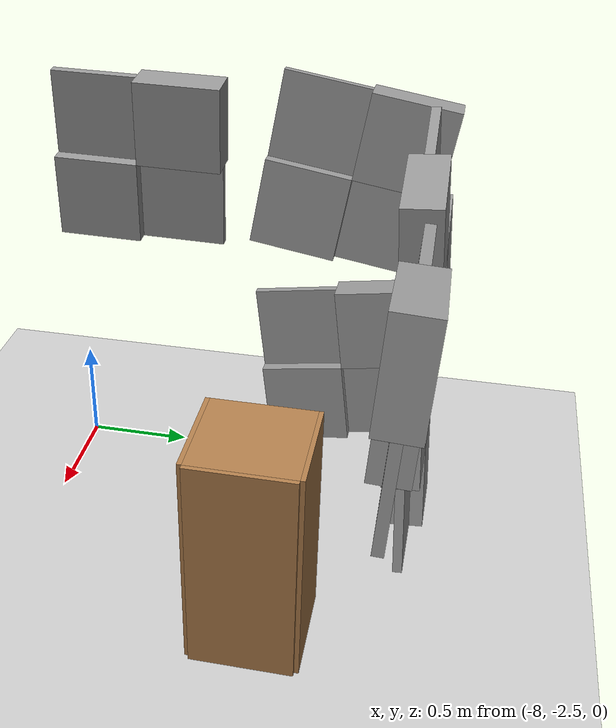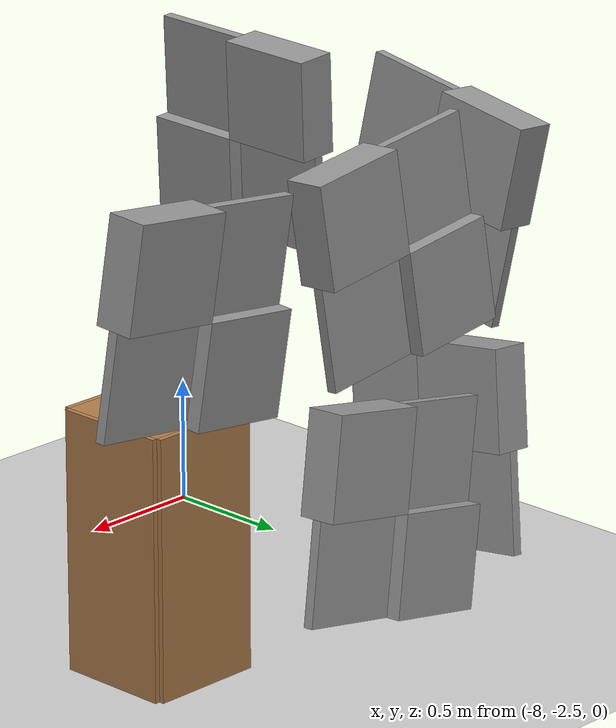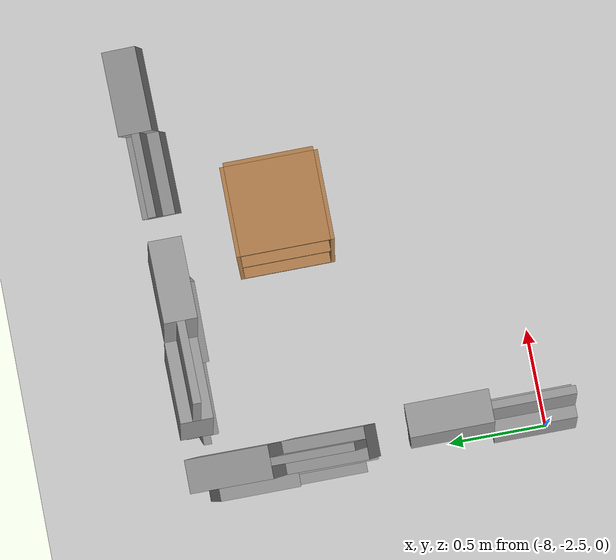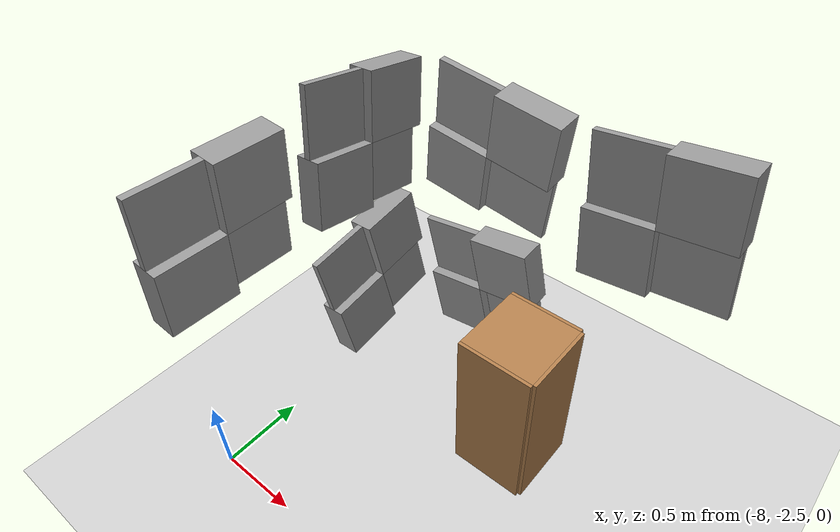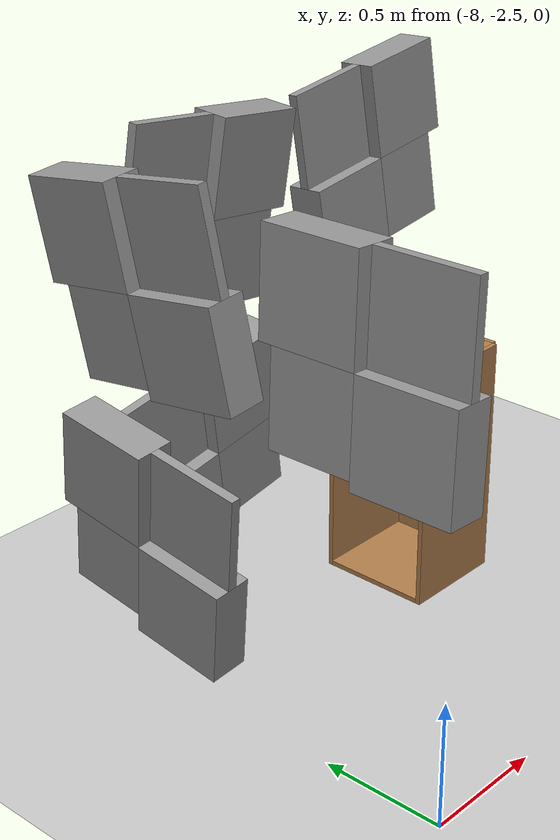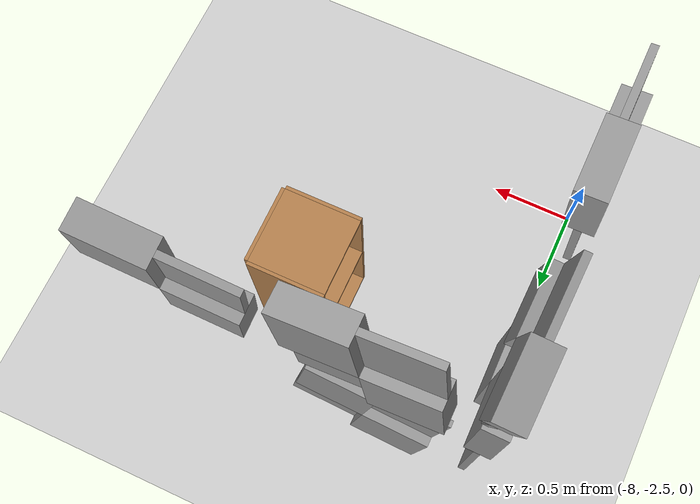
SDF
<sdf version="1.7">
 <world name="default">
  <model name="ground_plane">
   <static>1</static>
   <link name="link">
    <collision name="collision">
     <geometry><plane><normal>0 0 1</normal><size>100 100</size></plane></geometry>
     <surface>
      <contact><collide_bitmask>65535</collide_bitmask></contact>
      <friction><ode><mu>100</mu><mu2>50</mu2></ode></friction>
     </surface>
    </collision>
    <visual name="visual">
     <cast_shadows>0</cast_shadows>
     <geometry><plane><normal>0 0 1</normal><size>100 100</size></plane></geometry>
     <material>
      <script><uri>file://media/materials/scripts/gazebo.material</uri><name>Gazebo/Grey</name></script>
     </material>
    </visual>
   </link>
  </model>
  <model name="wall_slate_20">
   <static>1</static>
   <link name="link_0">
    <inertial><mass>1</mass></inertial>
    <gravity>0</gravity>
    <visual name="visual">
     <pose>0 0.2 0.2 0 -0 0</pose>
     <geometry><box><size>0.16 0.4 0.4</size></box></geometry>
     <material>
      <lighting>1</lighting>
      <script><uri>file://media/materials/scripts/gazebo.material</uri><name>Gazebo/Grey</name></script>
      <shader type="pixel"><normal_map>__default__</normal_map></shader>
      <ambient>0.3 0.3 0.3 1</ambient>
      <diffuse>0.7 0.7 0.7 1</diffuse>
      <specular>0.01 0.01 0.01 1</specular>
      <emissive>0 0 0 1</emissive>
     </material>
    </visual>
    <visual name="ModelPreview_0::link_0::visual_1">
     <pose>0 0.2 -0.2 0 -0 0</pose>
     <geometry><box><size>0.04 0.4 0.4</size></box></geometry>
     <material>
      <lighting>1</lighting>
      <script><uri>file://media/materials/scripts/gazebo.material</uri><name>Gazebo/Grey</name></script>
      <shader type="pixel"><normal_map>__default__</normal_map></shader>
      <ambient>0.3 0.3 0.3 1</ambient>
      <diffuse>0.7 0.7 0.7 1</diffuse>
      <specular>0.01 0.01 0.01 1</specular>
      <emissive>0 0 0 1</emissive>
     </material>
    </visual>
    <visual name="ModelPreview_0::link_0::visual_2">
     <pose>0 -0.2 0.2 0 -0 0</pose>
     <geometry><box><size>0.04 0.4 0.4</size></box></geometry>
     <material>
      <lighting>1</lighting>
      <script><uri>file://media/materials/scripts/gazebo.material</uri><name>Gazebo/Grey</name></script>
      <shader type="pixel"><normal_map>__default__</normal_map></shader>
      <ambient>0.3 0.3 0.3 1</ambient>
      <diffuse>0.7 0.7 0.7 1</diffuse>
      <specular>0.01 0.01 0.01 1</specular>
      <emissive>0 0 0 1</emissive>
     </material>
    </visual>
    <visual name="ModelPreview_0::link_0::visual_3">
     <pose>0 -0.2 -0.2 0 -0 0</pose>
     <geometry><box><size>0.16 0.4 0.4</size></box></geometry>
     <material>
      <lighting>1</lighting>
      <script><uri>file://media/materials/scripts/gazebo.material</uri><name>Gazebo/Grey</name></script>
      <shader type="pixel"><normal_map>__default__</normal_map></shader>
      <ambient>0.3 0.3 0.3 1</ambient>
      <diffuse>0.7 0.7 0.7 1</diffuse>
      <specular>0.01 0.01 0.01 1</specular>
      <emissive>0 0 0 1</emissive>
     </material>
    </visual>
    <collision name="collision_2">
     <pose>0 -0.2 0.2 0 -0 0</pose>
     <geometry><box><size>0.04 0.4 0.4</size></box></geometry>
     <surface>
      <friction>
       <ode><mu>1</mu><mu2>1</mu2><fdir1>0 0 0</fdir1><slip1>0</slip1><slip2>0</slip2></ode>
       <torsional>
        <coefficient>1</coefficient>
        <patch_radius>0</patch_radius>
        <surface_radius>0</surface_radius>
        <use_patch_radius>1</use_patch_radius>
        <ode><slip>0</slip></ode>
       </torsional>
      </friction>
      <bounce><restitution_coefficient>0</restitution_coefficient><threshold>1e+06</threshold></bounce>
      <contact>
       <collide_without_contact>0</collide_without_contact>
       <collide_without_contact_bitmask>1</collide_without_contact_bitmask>
       <collide_bitmask>1</collide_bitmask>
       <ode>
        <soft_cfm>0</soft_cfm>
        <soft_erp>0.2</soft_erp>
        <kp>1e+13</kp>
        <kd>1</kd>
        <max_vel>0.01</max_vel>
        <min_depth>0</min_depth>
       </ode>
       <bullet>
        <split_impulse>1</split_impulse>
        <split_impulse_penetration_threshold>-0.01</split_impulse_penetration_threshold>
        <soft_cfm>0</soft_cfm>
        <soft_erp>0.2</soft_erp>
        <kp>1e+13</kp>
        <kd>1</kd>
       </bullet>
      </contact>
     </surface>
    </collision>
    <collision name="collision_1">
     <pose>0 0.2 -0.2 0 -0 0</pose>
     <geometry><box><size>0.04 0.4 0.4</size></box></geometry>
     <surface>
      <friction>
       <ode><mu>1</mu><mu2>1</mu2><fdir1>0 0 0</fdir1><slip1>0</slip1><slip2>0</slip2></ode>
       <torsional>
        <coefficient>1</coefficient>
        <patch_radius>0</patch_radius>
        <surface_radius>0</surface_radius>
        <use_patch_radius>1</use_patch_radius>
        <ode><slip>0</slip></ode>
       </torsional>
      </friction>
      <bounce><restitution_coefficient>0</restitution_coefficient><threshold>1e+06</threshold></bounce>
      <contact>
       <collide_without_contact>0</collide_without_contact>
       <collide_without_contact_bitmask>1</collide_without_contact_bitmask>
       <collide_bitmask>1</collide_bitmask>
       <ode>
        <soft_cfm>0</soft_cfm>
        <soft_erp>0.2</soft_erp>
        <kp>1e+13</kp>
        <kd>1</kd>
        <max_vel>0.01</max_vel>
        <min_depth>0</min_depth>
       </ode>
       <bullet>
        <split_impulse>1</split_impulse>
        <split_impulse_penetration_threshold>-0.01</split_impulse_penetration_threshold>
        <soft_cfm>0</soft_cfm>
        <soft_erp>0.2</soft_erp>
        <kp>1e+13</kp>
        <kd>1</kd>
       </bullet>
      </contact>
     </surface>
    </collision>
    <collision name="collision_4">
     <pose>0 0.2 0.2 0 -0 0</pose>
     <geometry><box><size>0.16 0.4 0.4</size></box></geometry>
     <surface>
      <friction>
       <ode><mu>1</mu><mu2>1</mu2><fdir1>0 0 0</fdir1><slip1>0</slip1><slip2>0</slip2></ode>
       <torsional>
        <coefficient>1</coefficient>
        <patch_radius>0</patch_radius>
        <surface_radius>0</surface_radius>
        <use_patch_radius>1</use_patch_radius>
        <ode><slip>0</slip></ode>
       </torsional>
      </friction>
      <bounce><restitution_coefficient>0</restitution_coefficient><threshold>1e+06</threshold></bounce>
      <contact>
       <collide_without_contact>0</collide_without_contact>
       <collide_without_contact_bitmask>1</collide_without_contact_bitmask>
       <collide_bitmask>1</collide_bitmask>
       <ode>
        <soft_cfm>0</soft_cfm>
        <soft_erp>0.2</soft_erp>
        <kp>1e+13</kp>
        <kd>1</kd>
        <max_vel>0.01</max_vel>
        <min_depth>0</min_depth>
       </ode>
       <bullet>
        <split_impulse>1</split_impulse>
        <split_impulse_penetration_threshold>-0.01</split_impulse_penetration_threshold>
        <soft_cfm>0</soft_cfm>
        <soft_erp>0.2</soft_erp>
        <kp>1e+13</kp>
        <kd>1</kd>
       </bullet>
      </contact>
     </surface>
    </collision>
    <collision name="collision_3">
     <pose>0 -0.2 -0.2 0 -0 0</pose>
     <geometry><box><size>0.16 0.4 0.4</size></box></geometry>
     <surface>
      <friction>
       <ode><mu>1</mu><mu2>1</mu2><fdir1>0 0 0</fdir1><slip1>0</slip1><slip2>0</slip2></ode>
       <torsional>
        <coefficient>1</coefficient>
        <patch_radius>0</patch_radius>
        <surface_radius>0</surface_radius>
        <use_patch_radius>1</use_patch_radius>
        <ode><slip>0</slip></ode>
       </torsional>
      </friction>
      <bounce><restitution_coefficient>0</restitution_coefficient><threshold>1e+06</threshold></bounce>
      <contact>
       <collide_without_contact>0</collide_without_contact>
       <collide_without_contact_bitmask>1</collide_without_contact_bitmask>
       <collide_bitmask>1</collide_bitmask>
       <ode>
        <soft_cfm>0</soft_cfm>
        <soft_erp>0.2</soft_erp>
        <kp>1e+13</kp>
        <kd>1</kd>
        <max_vel>0.01</max_vel>
        <min_depth>0</min_depth>
       </ode>
       <bullet>
        <split_impulse>1</split_impulse>
        <split_impulse_penetration_threshold>-0.01</split_impulse_penetration_threshold>
        <soft_cfm>0</soft_cfm>
        <soft_erp>0.2</soft_erp>
        <kp>1e+13</kp>
        <kd>1</kd>
       </bullet>
      </contact>
     </surface>
    </collision>
   </link>
   <pose>-8.01575 -1.15988 1.6 -0.16 -0.08 -0.00481</pose>
  </model>
  <model name="wall_slate_26">
   <static>1</static>
   <link name="link_0">
    <inertial><mass>1</mass></inertial>
    <gravity>0</gravity>
    <visual name="visual">
     <pose>0 0.2 0.2 0 -0 0</pose>
     <geometry><box><size>0.16 0.4 0.4</size></box></geometry>
     <material>
      <lighting>1</lighting>
      <script><uri>file://media/materials/scripts/gazebo.material</uri><name>Gazebo/Grey</name></script>
      <shader type="pixel"><normal_map>__default__</normal_map></shader>
      <ambient>0.3 0.3 0.3 1</ambient>
      <diffuse>0.7 0.7 0.7 1</diffuse>
      <specular>0.01 0.01 0.01 1</specular>
      <emissive>0 0 0 1</emissive>
     </material>
    </visual>
    <visual name="ModelPreview_0::link_0::visual_1">
     <pose>0 0.2 -0.2 0 -0 0</pose>
     <geometry><box><size>0.04 0.4 0.4</size></box></geometry>
     <material>
      <lighting>1</lighting>
      <script><uri>file://media/materials/scripts/gazebo.material</uri><name>Gazebo/Grey</name></script>
      <shader type="pixel"><normal_map>__default__</normal_map></shader>
      <ambient>0.3 0.3 0.3 1</ambient>
      <diffuse>0.7 0.7 0.7 1</diffuse>
      <specular>0.01 0.01 0.01 1</specular>
      <emissive>0 0 0 1</emissive>
     </material>
    </visual>
    <visual name="ModelPreview_0::link_0::visual_2">
     <pose>0 -0.2 0.2 0 -0 0</pose>
     <geometry><box><size>0.04 0.4 0.4</size></box></geometry>
     <material>
      <lighting>1</lighting>
      <script><uri>file://media/materials/scripts/gazebo.material</uri><name>Gazebo/Grey</name></script>
      <shader type="pixel"><normal_map>__default__</normal_map></shader>
      <ambient>0.3 0.3 0.3 1</ambient>
      <diffuse>0.7 0.7 0.7 1</diffuse>
      <specular>0.01 0.01 0.01 1</specular>
      <emissive>0 0 0 1</emissive>
     </material>
    </visual>
    <visual name="ModelPreview_0::link_0::visual_3">
     <pose>0 -0.2 -0.2 0 -0 0</pose>
     <geometry><box><size>0.16 0.4 0.4</size></box></geometry>
     <material>
      <lighting>1</lighting>
      <script><uri>file://media/materials/scripts/gazebo.material</uri><name>Gazebo/Grey</name></script>
      <shader type="pixel"><normal_map>__default__</normal_map></shader>
      <ambient>0.3 0.3 0.3 1</ambient>
      <diffuse>0.7 0.7 0.7 1</diffuse>
      <specular>0.01 0.01 0.01 1</specular>
      <emissive>0 0 0 1</emissive>
     </material>
    </visual>
    <collision name="collision_2">
     <pose>0 -0.2 0.2 0 -0 0</pose>
     <geometry><box><size>0.04 0.4 0.4</size></box></geometry>
     <surface>
      <friction>
       <ode><mu>1</mu><mu2>1</mu2><fdir1>0 0 0</fdir1><slip1>0</slip1><slip2>0</slip2></ode>
       <torsional>
        <coefficient>1</coefficient>
        <patch_radius>0</patch_radius>
        <surface_radius>0</surface_radius>
        <use_patch_radius>1</use_patch_radius>
        <ode><slip>0</slip></ode>
       </torsional>
      </friction>
      <bounce><restitution_coefficient>0</restitution_coefficient><threshold>1e+06</threshold></bounce>
      <contact>
       <collide_without_contact>0</collide_without_contact>
       <collide_without_contact_bitmask>1</collide_without_contact_bitmask>
       <collide_bitmask>1</collide_bitmask>
       <ode>
        <soft_cfm>0</soft_cfm>
        <soft_erp>0.2</soft_erp>
        <kp>1e+13</kp>
        <kd>1</kd>
        <max_vel>0.01</max_vel>
        <min_depth>0</min_depth>
       </ode>
       <bullet>
        <split_impulse>1</split_impulse>
        <split_impulse_penetration_threshold>-0.01</split_impulse_penetration_threshold>
        <soft_cfm>0</soft_cfm>
        <soft_erp>0.2</soft_erp>
        <kp>1e+13</kp>
        <kd>1</kd>
       </bullet>
      </contact>
     </surface>
    </collision>
    <collision name="collision_1">
     <pose>0 0.2 -0.2 0 -0 0</pose>
     <geometry><box><size>0.04 0.4 0.4</size></box></geometry>
     <surface>
      <friction>
       <ode><mu>1</mu><mu2>1</mu2><fdir1>0 0 0</fdir1><slip1>0</slip1><slip2>0</slip2></ode>
       <torsional>
        <coefficient>1</coefficient>
        <patch_radius>0</patch_radius>
        <surface_radius>0</surface_radius>
        <use_patch_radius>1</use_patch_radius>
        <ode><slip>0</slip></ode>
       </torsional>
      </friction>
      <bounce><restitution_coefficient>0</restitution_coefficient><threshold>1e+06</threshold></bounce>
      <contact>
       <collide_without_contact>0</collide_without_contact>
       <collide_without_contact_bitmask>1</collide_without_contact_bitmask>
       <collide_bitmask>1</collide_bitmask>
       <ode>
        <soft_cfm>0</soft_cfm>
        <soft_erp>0.2</soft_erp>
        <kp>1e+13</kp>
        <kd>1</kd>
        <max_vel>0.01</max_vel>
        <min_depth>0</min_depth>
       </ode>
       <bullet>
        <split_impulse>1</split_impulse>
        <split_impulse_penetration_threshold>-0.01</split_impulse_penetration_threshold>
        <soft_cfm>0</soft_cfm>
        <soft_erp>0.2</soft_erp>
        <kp>1e+13</kp>
        <kd>1</kd>
       </bullet>
      </contact>
     </surface>
    </collision>
    <collision name="collision_4">
     <pose>0 0.2 0.2 0 -0 0</pose>
     <geometry><box><size>0.16 0.4 0.4</size></box></geometry>
     <surface>
      <friction>
       <ode><mu>1</mu><mu2>1</mu2><fdir1>0 0 0</fdir1><slip1>0</slip1><slip2>0</slip2></ode>
       <torsional>
        <coefficient>1</coefficient>
        <patch_radius>0</patch_radius>
        <surface_radius>0</surface_radius>
        <use_patch_radius>1</use_patch_radius>
        <ode><slip>0</slip></ode>
       </torsional>
      </friction>
      <bounce><restitution_coefficient>0</restitution_coefficient><threshold>1e+06</threshold></bounce>
      <contact>
       <collide_without_contact>0</collide_without_contact>
       <collide_without_contact_bitmask>1</collide_without_contact_bitmask>
       <collide_bitmask>1</collide_bitmask>
       <ode>
        <soft_cfm>0</soft_cfm>
        <soft_erp>0.2</soft_erp>
        <kp>1e+13</kp>
        <kd>1</kd>
        <max_vel>0.01</max_vel>
        <min_depth>0</min_depth>
       </ode>
       <bullet>
        <split_impulse>1</split_impulse>
        <split_impulse_penetration_threshold>-0.01</split_impulse_penetration_threshold>
        <soft_cfm>0</soft_cfm>
        <soft_erp>0.2</soft_erp>
        <kp>1e+13</kp>
        <kd>1</kd>
       </bullet>
      </contact>
     </surface>
    </collision>
    <collision name="collision_3">
     <pose>0 -0.2 -0.2 0 -0 0</pose>
     <geometry><box><size>0.16 0.4 0.4</size></box></geometry>
     <surface>
      <friction>
       <ode><mu>1</mu><mu2>1</mu2><fdir1>0 0 0</fdir1><slip1>0</slip1><slip2>0</slip2></ode>
       <torsional>
        <coefficient>1</coefficient>
        <patch_radius>0</patch_radius>
        <surface_radius>0</surface_radius>
        <use_patch_radius>1</use_patch_radius>
        <ode><slip>0</slip></ode>
       </torsional>
      </friction>
      <bounce><restitution_coefficient>0</restitution_coefficient><threshold>1e+06</threshold></bounce>
      <contact>
       <collide_without_contact>0</collide_without_contact>
       <collide_without_contact_bitmask>1</collide_without_contact_bitmask>
       <collide_bitmask>1</collide_bitmask>
       <ode>
        <soft_cfm>0</soft_cfm>
        <soft_erp>0.2</soft_erp>
        <kp>1e+13</kp>
        <kd>1</kd>
        <max_vel>0.01</max_vel>
        <min_depth>0</min_depth>
       </ode>
       <bullet>
        <split_impulse>1</split_impulse>
        <split_impulse_penetration_threshold>-0.01</split_impulse_penetration_threshold>
        <soft_cfm>0</soft_cfm>
        <soft_erp>0.2</soft_erp>
        <kp>1e+13</kp>
        <kd>1</kd>
       </bullet>
      </contact>
     </surface>
    </collision>
   </link>
   <pose>-7.37149 -0.783832 1.6 -0.12 0.06 -1.5659</pose>
  </model>
  <model name="wall_slate_29">
   <static>1</static>
   <link name="link_0">
    <inertial><mass>1</mass></inertial>
    <gravity>0</gravity>
    <visual name="visual">
     <pose>0 0.2 0.2 0 -0 0</pose>
     <geometry><box><size>0.16 0.4 0.4</size></box></geometry>
     <material>
      <lighting>1</lighting>
      <script><uri>file://media/materials/scripts/gazebo.material</uri><name>Gazebo/Grey</name></script>
      <shader type="pixel"><normal_map>__default__</normal_map></shader>
      <ambient>0.3 0.3 0.3 1</ambient>
      <diffuse>0.7 0.7 0.7 1</diffuse>
      <specular>0.01 0.01 0.01 1</specular>
      <emissive>0 0 0 1</emissive>
     </material>
    </visual>
    <visual name="ModelPreview_0::link_0::visual_1">
     <pose>0 0.2 -0.2 0 -0 0</pose>
     <geometry><box><size>0.04 0.4 0.4</size></box></geometry>
     <material>
      <lighting>1</lighting>
      <script><uri>file://media/materials/scripts/gazebo.material</uri><name>Gazebo/Grey</name></script>
      <shader type="pixel"><normal_map>__default__</normal_map></shader>
      <ambient>0.3 0.3 0.3 1</ambient>
      <diffuse>0.7 0.7 0.7 1</diffuse>
      <specular>0.01 0.01 0.01 1</specular>
      <emissive>0 0 0 1</emissive>
     </material>
    </visual>
    <visual name="ModelPreview_0::link_0::visual_2">
     <pose>0 -0.2 0.2 0 -0 0</pose>
     <geometry><box><size>0.04 0.4 0.4</size></box></geometry>
     <material>
      <lighting>1</lighting>
      <script><uri>file://media/materials/scripts/gazebo.material</uri><name>Gazebo/Grey</name></script>
      <shader type="pixel"><normal_map>__default__</normal_map></shader>
      <ambient>0.3 0.3 0.3 1</ambient>
      <diffuse>0.7 0.7 0.7 1</diffuse>
      <specular>0.01 0.01 0.01 1</specular>
      <emissive>0 0 0 1</emissive>
     </material>
    </visual>
    <visual name="ModelPreview_0::link_0::visual_3">
     <pose>0 -0.2 -0.2 0 -0 0</pose>
     <geometry><box><size>0.16 0.4 0.4</size></box></geometry>
     <material>
      <lighting>1</lighting>
      <script><uri>file://media/materials/scripts/gazebo.material</uri><name>Gazebo/Grey</name></script>
      <shader type="pixel"><normal_map>__default__</normal_map></shader>
      <ambient>0.3 0.3 0.3 1</ambient>
      <diffuse>0.7 0.7 0.7 1</diffuse>
      <specular>0.01 0.01 0.01 1</specular>
      <emissive>0 0 0 1</emissive>
     </material>
    </visual>
    <collision name="collision_2">
     <pose>0 -0.2 0.2 0 -0 0</pose>
     <geometry><box><size>0.04 0.4 0.4</size></box></geometry>
     <surface>
      <friction>
       <ode><mu>1</mu><mu2>1</mu2><fdir1>0 0 0</fdir1><slip1>0</slip1><slip2>0</slip2></ode>
       <torsional>
        <coefficient>1</coefficient>
        <patch_radius>0</patch_radius>
        <surface_radius>0</surface_radius>
        <use_patch_radius>1</use_patch_radius>
        <ode><slip>0</slip></ode>
       </torsional>
      </friction>
      <bounce><restitution_coefficient>0</restitution_coefficient><threshold>1e+06</threshold></bounce>
      <contact>
       <collide_without_contact>0</collide_without_contact>
       <collide_without_contact_bitmask>1</collide_without_contact_bitmask>
       <collide_bitmask>1</collide_bitmask>
       <ode>
        <soft_cfm>0</soft_cfm>
        <soft_erp>0.2</soft_erp>
        <kp>1e+13</kp>
        <kd>1</kd>
        <max_vel>0.01</max_vel>
        <min_depth>0</min_depth>
       </ode>
       <bullet>
        <split_impulse>1</split_impulse>
        <split_impulse_penetration_threshold>-0.01</split_impulse_penetration_threshold>
        <soft_cfm>0</soft_cfm>
        <soft_erp>0.2</soft_erp>
        <kp>1e+13</kp>
        <kd>1</kd>
       </bullet>
      </contact>
     </surface>
    </collision>
    <collision name="collision_1">
     <pose>0 0.2 -0.2 0 -0 0</pose>
     <geometry><box><size>0.04 0.4 0.4</size></box></geometry>
     <surface>
      <friction>
       <ode><mu>1</mu><mu2>1</mu2><fdir1>0 0 0</fdir1><slip1>0</slip1><slip2>0</slip2></ode>
       <torsional>
        <coefficient>1</coefficient>
        <patch_radius>0</patch_radius>
        <surface_radius>0</surface_radius>
        <use_patch_radius>1</use_patch_radius>
        <ode><slip>0</slip></ode>
       </torsional>
      </friction>
      <bounce><restitution_coefficient>0</restitution_coefficient><threshold>1e+06</threshold></bounce>
      <contact>
       <collide_without_contact>0</collide_without_contact>
       <collide_without_contact_bitmask>1</collide_without_contact_bitmask>
       <collide_bitmask>1</collide_bitmask>
       <ode>
        <soft_cfm>0</soft_cfm>
        <soft_erp>0.2</soft_erp>
        <kp>1e+13</kp>
        <kd>1</kd>
        <max_vel>0.01</max_vel>
        <min_depth>0</min_depth>
       </ode>
       <bullet>
        <split_impulse>1</split_impulse>
        <split_impulse_penetration_threshold>-0.01</split_impulse_penetration_threshold>
        <soft_cfm>0</soft_cfm>
        <soft_erp>0.2</soft_erp>
        <kp>1e+13</kp>
        <kd>1</kd>
       </bullet>
      </contact>
     </surface>
    </collision>
    <collision name="collision_4">
     <pose>0 0.2 0.2 0 -0 0</pose>
     <geometry><box><size>0.16 0.4 0.4</size></box></geometry>
     <surface>
      <friction>
       <ode><mu>1</mu><mu2>1</mu2><fdir1>0 0 0</fdir1><slip1>0</slip1><slip2>0</slip2></ode>
       <torsional>
        <coefficient>1</coefficient>
        <patch_radius>0</patch_radius>
        <surface_radius>0</surface_radius>
        <use_patch_radius>1</use_patch_radius>
        <ode><slip>0</slip></ode>
       </torsional>
      </friction>
      <bounce><restitution_coefficient>0</restitution_coefficient><threshold>1e+06</threshold></bounce>
      <contact>
       <collide_without_contact>0</collide_without_contact>
       <collide_without_contact_bitmask>1</collide_without_contact_bitmask>
       <collide_bitmask>1</collide_bitmask>
       <ode>
        <soft_cfm>0</soft_cfm>
        <soft_erp>0.2</soft_erp>
        <kp>1e+13</kp>
        <kd>1</kd>
        <max_vel>0.01</max_vel>
        <min_depth>0</min_depth>
       </ode>
       <bullet>
        <split_impulse>1</split_impulse>
        <split_impulse_penetration_threshold>-0.01</split_impulse_penetration_threshold>
        <soft_cfm>0</soft_cfm>
        <soft_erp>0.2</soft_erp>
        <kp>1e+13</kp>
        <kd>1</kd>
       </bullet>
      </contact>
     </surface>
    </collision>
    <collision name="collision_3">
     <pose>0 -0.2 -0.2 0 -0 0</pose>
     <geometry><box><size>0.16 0.4 0.4</size></box></geometry>
     <surface>
      <friction>
       <ode><mu>1</mu><mu2>1</mu2><fdir1>0 0 0</fdir1><slip1>0</slip1><slip2>0</slip2></ode>
       <torsional>
        <coefficient>1</coefficient>
        <patch_radius>0</patch_radius>
        <surface_radius>0</surface_radius>
        <use_patch_radius>1</use_patch_radius>
        <ode><slip>0</slip></ode>
       </torsional>
      </friction>
      <bounce><restitution_coefficient>0</restitution_coefficient><threshold>1e+06</threshold></bounce>
      <contact>
       <collide_without_contact>0</collide_without_contact>
       <collide_without_contact_bitmask>1</collide_without_contact_bitmask>
       <collide_bitmask>1</collide_bitmask>
       <ode>
        <soft_cfm>0</soft_cfm>
        <soft_erp>0.2</soft_erp>
        <kp>1e+13</kp>
        <kd>1</kd>
        <max_vel>0.01</max_vel>
        <min_depth>0</min_depth>
       </ode>
       <bullet>
        <split_impulse>1</split_impulse>
        <split_impulse_penetration_threshold>-0.01</split_impulse_penetration_threshold>
        <soft_cfm>0</soft_cfm>
        <soft_erp>0.2</soft_erp>
        <kp>1e+13</kp>
        <kd>1</kd>
       </bullet>
      </contact>
     </surface>
    </collision>
   </link>
   <pose>-7.37149 -0.783832 0.6 0.18 0.06 -1.5659</pose>
  </model>
  <model name="wall_slate_65">
   <static>1</static>
   <link name="link_0">
    <inertial><mass>1</mass></inertial>
    <gravity>0</gravity>
    <visual name="visual">
     <pose>0 0.2 0.2 0 -0 0</pose>
     <geometry><box><size>0.16 0.4 0.4</size></box></geometry>
     <material>
      <lighting>1</lighting>
      <script><uri>file://media/materials/scripts/gazebo.material</uri><name>Gazebo/Grey</name></script>
      <shader type="pixel"><normal_map>__default__</normal_map></shader>
      <ambient>0.3 0.3 0.3 1</ambient>
      <diffuse>0.7 0.7 0.7 1</diffuse>
      <specular>0.01 0.01 0.01 1</specular>
      <emissive>0 0 0 1</emissive>
     </material>
    </visual>
    <visual name="ModelPreview_0::link_0::visual_1">
     <pose>0 0.2 -0.2 0 -0 0</pose>
     <geometry><box><size>0.04 0.4 0.4</size></box></geometry>
     <material>
      <lighting>1</lighting>
      <script><uri>file://media/materials/scripts/gazebo.material</uri><name>Gazebo/Grey</name></script>
      <shader type="pixel"><normal_map>__default__</normal_map></shader>
      <ambient>0.3 0.3 0.3 1</ambient>
      <diffuse>0.7 0.7 0.7 1</diffuse>
      <specular>0.01 0.01 0.01 1</specular>
      <emissive>0 0 0 1</emissive>
     </material>
    </visual>
    <visual name="ModelPreview_0::link_0::visual_2">
     <pose>0 -0.2 0.2 0 -0 0</pose>
     <geometry><box><size>0.04 0.4 0.4</size></box></geometry>
     <material>
      <lighting>1</lighting>
      <script><uri>file://media/materials/scripts/gazebo.material</uri><name>Gazebo/Grey</name></script>
      <shader type="pixel"><normal_map>__default__</normal_map></shader>
      <ambient>0.3 0.3 0.3 1</ambient>
      <diffuse>0.7 0.7 0.7 1</diffuse>
      <specular>0.01 0.01 0.01 1</specular>
      <emissive>0 0 0 1</emissive>
     </material>
    </visual>
    <visual name="ModelPreview_0::link_0::visual_3">
     <pose>0 -0.2 -0.2 0 -0 0</pose>
     <geometry><box><size>0.16 0.4 0.4</size></box></geometry>
     <material>
      <lighting>1</lighting>
      <script><uri>file://media/materials/scripts/gazebo.material</uri><name>Gazebo/Grey</name></script>
      <shader type="pixel"><normal_map>__default__</normal_map></shader>
      <ambient>0.3 0.3 0.3 1</ambient>
      <diffuse>0.7 0.7 0.7 1</diffuse>
      <specular>0.01 0.01 0.01 1</specular>
      <emissive>0 0 0 1</emissive>
     </material>
    </visual>
    <collision name="collision_2">
     <pose>0 -0.2 0.2 0 -0 0</pose>
     <geometry><box><size>0.04 0.4 0.4</size></box></geometry>
     <surface>
      <friction>
       <ode><mu>1</mu><mu2>1</mu2><fdir1>0 0 0</fdir1><slip1>0</slip1><slip2>0</slip2></ode>
       <torsional>
        <coefficient>1</coefficient>
        <patch_radius>0</patch_radius>
        <surface_radius>0</surface_radius>
        <use_patch_radius>1</use_patch_radius>
        <ode><slip>0</slip></ode>
       </torsional>
      </friction>
      <bounce><restitution_coefficient>0</restitution_coefficient><threshold>1e+06</threshold></bounce>
      <contact>
       <collide_without_contact>0</collide_without_contact>
       <collide_without_contact_bitmask>1</collide_without_contact_bitmask>
       <collide_bitmask>1</collide_bitmask>
       <ode>
        <soft_cfm>0</soft_cfm>
        <soft_erp>0.2</soft_erp>
        <kp>1e+13</kp>
        <kd>1</kd>
        <max_vel>0.01</max_vel>
        <min_depth>0</min_depth>
       </ode>
       <bullet>
        <split_impulse>1</split_impulse>
        <split_impulse_penetration_threshold>-0.01</split_impulse_penetration_threshold>
        <soft_cfm>0</soft_cfm>
        <soft_erp>0.2</soft_erp>
        <kp>1e+13</kp>
        <kd>1</kd>
       </bullet>
      </contact>
     </surface>
    </collision>
    <collision name="collision_1">
     <pose>0 0.2 -0.2 0 -0 0</pose>
     <geometry><box><size>0.04 0.4 0.4</size></box></geometry>
     <surface>
      <friction>
       <ode><mu>1</mu><mu2>1</mu2><fdir1>0 0 0</fdir1><slip1>0</slip1><slip2>0</slip2></ode>
       <torsional>
        <coefficient>1</coefficient>
        <patch_radius>0</patch_radius>
        <surface_radius>0</surface_radius>
        <use_patch_radius>1</use_patch_radius>
        <ode><slip>0</slip></ode>
       </torsional>
      </friction>
      <bounce><restitution_coefficient>0</restitution_coefficient><threshold>1e+06</threshold></bounce>
      <contact>
       <collide_without_contact>0</collide_without_contact>
       <collide_without_contact_bitmask>1</collide_without_contact_bitmask>
       <collide_bitmask>1</collide_bitmask>
       <ode>
        <soft_cfm>0</soft_cfm>
        <soft_erp>0.2</soft_erp>
        <kp>1e+13</kp>
        <kd>1</kd>
        <max_vel>0.01</max_vel>
        <min_depth>0</min_depth>
       </ode>
       <bullet>
        <split_impulse>1</split_impulse>
        <split_impulse_penetration_threshold>-0.01</split_impulse_penetration_threshold>
        <soft_cfm>0</soft_cfm>
        <soft_erp>0.2</soft_erp>
        <kp>1e+13</kp>
        <kd>1</kd>
       </bullet>
      </contact>
     </surface>
    </collision>
    <collision name="collision_4">
     <pose>0 0.2 0.2 0 -0 0</pose>
     <geometry><box><size>0.16 0.4 0.4</size></box></geometry>
     <surface>
      <friction>
       <ode><mu>1</mu><mu2>1</mu2><fdir1>0 0 0</fdir1><slip1>0</slip1><slip2>0</slip2></ode>
       <torsional>
        <coefficient>1</coefficient>
        <patch_radius>0</patch_radius>
        <surface_radius>0</surface_radius>
        <use_patch_radius>1</use_patch_radius>
        <ode><slip>0</slip></ode>
       </torsional>
      </friction>
      <bounce><restitution_coefficient>0</restitution_coefficient><threshold>1e+06</threshold></bounce>
      <contact>
       <collide_without_contact>0</collide_without_contact>
       <collide_without_contact_bitmask>1</collide_without_contact_bitmask>
       <collide_bitmask>1</collide_bitmask>
       <ode>
        <soft_cfm>0</soft_cfm>
        <soft_erp>0.2</soft_erp>
        <kp>1e+13</kp>
        <kd>1</kd>
        <max_vel>0.01</max_vel>
        <min_depth>0</min_depth>
       </ode>
       <bullet>
        <split_impulse>1</split_impulse>
        <split_impulse_penetration_threshold>-0.01</split_impulse_penetration_threshold>
        <soft_cfm>0</soft_cfm>
        <soft_erp>0.2</soft_erp>
        <kp>1e+13</kp>
        <kd>1</kd>
       </bullet>
      </contact>
     </surface>
    </collision>
    <collision name="collision_3">
     <pose>0 -0.2 -0.2 0 -0 0</pose>
     <geometry><box><size>0.16 0.4 0.4</size></box></geometry>
     <surface>
      <friction>
       <ode><mu>1</mu><mu2>1</mu2><fdir1>0 0 0</fdir1><slip1>0</slip1><slip2>0</slip2></ode>
       <torsional>
        <coefficient>1</coefficient>
        <patch_radius>0</patch_radius>
        <surface_radius>0</surface_radius>
        <use_patch_radius>1</use_patch_radius>
        <ode><slip>0</slip></ode>
       </torsional>
      </friction>
      <bounce><restitution_coefficient>0</restitution_coefficient><threshold>1e+06</threshold></bounce>
      <contact>
       <collide_without_contact>0</collide_without_contact>
       <collide_without_contact_bitmask>1</collide_without_contact_bitmask>
       <collide_bitmask>1</collide_bitmask>
       <ode>
        <soft_cfm>0</soft_cfm>
        <soft_erp>0.2</soft_erp>
        <kp>1e+13</kp>
        <kd>1</kd>
        <max_vel>0.01</max_vel>
        <min_depth>0</min_depth>
       </ode>
       <bullet>
        <split_impulse>1</split_impulse>
        <split_impulse_penetration_threshold>-0.01</split_impulse_penetration_threshold>
        <soft_cfm>0</soft_cfm>
        <soft_erp>0.2</soft_erp>
        <kp>1e+13</kp>
        <kd>1</kd>
       </bullet>
      </contact>
     </surface>
    </collision>
   </link>
   <pose>-8.01575 -1.15988 0.6 0.14 -0.08 -0.00481</pose>
  </model>
  <model name="wall_slate_70">
   <static>1</static>
   <link name="link_0">
    <inertial><mass>1</mass></inertial>
    <gravity>0</gravity>
    <visual name="visual">
     <pose>0 0.2 0.2 0 -0 0</pose>
     <geometry><box><size>0.16 0.4 0.4</size></box></geometry>
     <material>
      <lighting>1</lighting>
      <script><uri>file://media/materials/scripts/gazebo.material</uri><name>Gazebo/Grey</name></script>
      <shader type="pixel"><normal_map>__default__</normal_map></shader>
      <ambient>0.3 0.3 0.3 1</ambient>
      <diffuse>0.7 0.7 0.7 1</diffuse>
      <specular>0.01 0.01 0.01 1</specular>
      <emissive>0 0 0 1</emissive>
     </material>
    </visual>
    <visual name="ModelPreview_0::link_0::visual_1">
     <pose>0 0.2 -0.2 0 -0 0</pose>
     <geometry><box><size>0.04 0.4 0.4</size></box></geometry>
     <material>
      <lighting>1</lighting>
      <script><uri>file://media/materials/scripts/gazebo.material</uri><name>Gazebo/Grey</name></script>
      <shader type="pixel"><normal_map>__default__</normal_map></shader>
      <ambient>0.3 0.3 0.3 1</ambient>
      <diffuse>0.7 0.7 0.7 1</diffuse>
      <specular>0.01 0.01 0.01 1</specular>
      <emissive>0 0 0 1</emissive>
     </material>
    </visual>
    <visual name="ModelPreview_0::link_0::visual_2">
     <pose>0 -0.2 0.2 0 -0 0</pose>
     <geometry><box><size>0.04 0.4 0.4</size></box></geometry>
     <material>
      <lighting>1</lighting>
      <script><uri>file://media/materials/scripts/gazebo.material</uri><name>Gazebo/Grey</name></script>
      <shader type="pixel"><normal_map>__default__</normal_map></shader>
      <ambient>0.3 0.3 0.3 1</ambient>
      <diffuse>0.7 0.7 0.7 1</diffuse>
      <specular>0.01 0.01 0.01 1</specular>
      <emissive>0 0 0 1</emissive>
     </material>
    </visual>
    <visual name="ModelPreview_0::link_0::visual_3">
     <pose>0 -0.2 -0.2 0 -0 0</pose>
     <geometry><box><size>0.16 0.4 0.4</size></box></geometry>
     <material>
      <lighting>1</lighting>
      <script><uri>file://media/materials/scripts/gazebo.material</uri><name>Gazebo/Grey</name></script>
      <shader type="pixel"><normal_map>__default__</normal_map></shader>
      <ambient>0.3 0.3 0.3 1</ambient>
      <diffuse>0.7 0.7 0.7 1</diffuse>
      <specular>0.01 0.01 0.01 1</specular>
      <emissive>0 0 0 1</emissive>
     </material>
    </visual>
    <collision name="collision_2">
     <pose>0 -0.2 0.2 0 -0 0</pose>
     <geometry><box><size>0.04 0.4 0.4</size></box></geometry>
     <surface>
      <friction>
       <ode><mu>1</mu><mu2>1</mu2><fdir1>0 0 0</fdir1><slip1>0</slip1><slip2>0</slip2></ode>
       <torsional>
        <coefficient>1</coefficient>
        <patch_radius>0</patch_radius>
        <surface_radius>0</surface_radius>
        <use_patch_radius>1</use_patch_radius>
        <ode><slip>0</slip></ode>
       </torsional>
      </friction>
      <bounce><restitution_coefficient>0</restitution_coefficient><threshold>1e+06</threshold></bounce>
      <contact>
       <collide_without_contact>0</collide_without_contact>
       <collide_without_contact_bitmask>1</collide_without_contact_bitmask>
       <collide_bitmask>1</collide_bitmask>
       <ode>
        <soft_cfm>0</soft_cfm>
        <soft_erp>0.2</soft_erp>
        <kp>1e+13</kp>
        <kd>1</kd>
        <max_vel>0.01</max_vel>
        <min_depth>0</min_depth>
       </ode>
       <bullet>
        <split_impulse>1</split_impulse>
        <split_impulse_penetration_threshold>-0.01</split_impulse_penetration_threshold>
        <soft_cfm>0</soft_cfm>
        <soft_erp>0.2</soft_erp>
        <kp>1e+13</kp>
        <kd>1</kd>
       </bullet>
      </contact>
     </surface>
    </collision>
    <collision name="collision_1">
     <pose>0 0.2 -0.2 0 -0 0</pose>
     <geometry><box><size>0.04 0.4 0.4</size></box></geometry>
     <surface>
      <friction>
       <ode><mu>1</mu><mu2>1</mu2><fdir1>0 0 0</fdir1><slip1>0</slip1><slip2>0</slip2></ode>
       <torsional>
        <coefficient>1</coefficient>
        <patch_radius>0</patch_radius>
        <surface_radius>0</surface_radius>
        <use_patch_radius>1</use_patch_radius>
        <ode><slip>0</slip></ode>
       </torsional>
      </friction>
      <bounce><restitution_coefficient>0</restitution_coefficient><threshold>1e+06</threshold></bounce>
      <contact>
       <collide_without_contact>0</collide_without_contact>
       <collide_without_contact_bitmask>1</collide_without_contact_bitmask>
       <collide_bitmask>1</collide_bitmask>
       <ode>
        <soft_cfm>0</soft_cfm>
        <soft_erp>0.2</soft_erp>
        <kp>1e+13</kp>
        <kd>1</kd>
        <max_vel>0.01</max_vel>
        <min_depth>0</min_depth>
       </ode>
       <bullet>
        <split_impulse>1</split_impulse>
        <split_impulse_penetration_threshold>-0.01</split_impulse_penetration_threshold>
        <soft_cfm>0</soft_cfm>
        <soft_erp>0.2</soft_erp>
        <kp>1e+13</kp>
        <kd>1</kd>
       </bullet>
      </contact>
     </surface>
    </collision>
    <collision name="collision_4">
     <pose>0 0.2 0.2 0 -0 0</pose>
     <geometry><box><size>0.16 0.4 0.4</size></box></geometry>
     <surface>
      <friction>
       <ode><mu>1</mu><mu2>1</mu2><fdir1>0 0 0</fdir1><slip1>0</slip1><slip2>0</slip2></ode>
       <torsional>
        <coefficient>1</coefficient>
        <patch_radius>0</patch_radius>
        <surface_radius>0</surface_radius>
        <use_patch_radius>1</use_patch_radius>
        <ode><slip>0</slip></ode>
       </torsional>
      </friction>
      <bounce><restitution_coefficient>0</restitution_coefficient><threshold>1e+06</threshold></bounce>
      <contact>
       <collide_without_contact>0</collide_without_contact>
       <collide_without_contact_bitmask>1</collide_without_contact_bitmask>
       <collide_bitmask>1</collide_bitmask>
       <ode>
        <soft_cfm>0</soft_cfm>
        <soft_erp>0.2</soft_erp>
        <kp>1e+13</kp>
        <kd>1</kd>
        <max_vel>0.01</max_vel>
        <min_depth>0</min_depth>
       </ode>
       <bullet>
        <split_impulse>1</split_impulse>
        <split_impulse_penetration_threshold>-0.01</split_impulse_penetration_threshold>
        <soft_cfm>0</soft_cfm>
        <soft_erp>0.2</soft_erp>
        <kp>1e+13</kp>
        <kd>1</kd>
       </bullet>
      </contact>
     </surface>
    </collision>
    <collision name="collision_3">
     <pose>0 -0.2 -0.2 0 -0 0</pose>
     <geometry><box><size>0.16 0.4 0.4</size></box></geometry>
     <surface>
      <friction>
       <ode><mu>1</mu><mu2>1</mu2><fdir1>0 0 0</fdir1><slip1>0</slip1><slip2>0</slip2></ode>
       <torsional>
        <coefficient>1</coefficient>
        <patch_radius>0</patch_radius>
        <surface_radius>0</surface_radius>
        <use_patch_radius>1</use_patch_radius>
        <ode><slip>0</slip></ode>
       </torsional>
      </friction>
      <bounce><restitution_coefficient>0</restitution_coefficient><threshold>1e+06</threshold></bounce>
      <contact>
       <collide_without_contact>0</collide_without_contact>
       <collide_without_contact_bitmask>1</collide_without_contact_bitmask>
       <collide_bitmask>1</collide_bitmask>
       <ode>
        <soft_cfm>0</soft_cfm>
        <soft_erp>0.2</soft_erp>
        <kp>1e+13</kp>
        <kd>1</kd>
        <max_vel>0.01</max_vel>
        <min_depth>0</min_depth>
       </ode>
       <bullet>
        <split_impulse>1</split_impulse>
        <split_impulse_penetration_threshold>-0.01</split_impulse_penetration_threshold>
        <soft_cfm>0</soft_cfm>
        <soft_erp>0.2</soft_erp>
        <kp>1e+13</kp>
        <kd>1</kd>
       </bullet>
      </contact>
     </surface>
    </collision>
   </link>
   <pose>-6.37149 -0.783829 1.6 0.12 -0.06 -1.5659</pose>
  </model>
  <model name="wall_slate_93">
   <static>1</static>
   <link name="link_0">
    <inertial><mass>1</mass></inertial>
    <gravity>0</gravity>
    <visual name="visual">
     <pose>0 0.2 0.2 0 -0 0</pose>
     <geometry><box><size>0.16 0.4 0.4</size></box></geometry>
     <material>
      <lighting>1</lighting>
      <script><uri>file://media/materials/scripts/gazebo.material</uri><name>Gazebo/Grey</name></script>
      <shader type="pixel"><normal_map>__default__</normal_map></shader>
      <ambient>0.3 0.3 0.3 1</ambient>
      <diffuse>0.7 0.7 0.7 1</diffuse>
      <specular>0.01 0.01 0.01 1</specular>
      <emissive>0 0 0 1</emissive>
     </material>
    </visual>
    <visual name="ModelPreview_0::link_0::visual_1">
     <pose>0 0.2 -0.2 0 -0 0</pose>
     <geometry><box><size>0.04 0.4 0.4</size></box></geometry>
     <material>
      <lighting>1</lighting>
      <script><uri>file://media/materials/scripts/gazebo.material</uri><name>Gazebo/Grey</name></script>
      <shader type="pixel"><normal_map>__default__</normal_map></shader>
      <ambient>0.3 0.3 0.3 1</ambient>
      <diffuse>0.7 0.7 0.7 1</diffuse>
      <specular>0.01 0.01 0.01 1</specular>
      <emissive>0 0 0 1</emissive>
     </material>
    </visual>
    <visual name="ModelPreview_0::link_0::visual_2">
     <pose>0 -0.2 0.2 0 -0 0</pose>
     <geometry><box><size>0.04 0.4 0.4</size></box></geometry>
     <material>
      <lighting>1</lighting>
      <script><uri>file://media/materials/scripts/gazebo.material</uri><name>Gazebo/Grey</name></script>
      <shader type="pixel"><normal_map>__default__</normal_map></shader>
      <ambient>0.3 0.3 0.3 1</ambient>
      <diffuse>0.7 0.7 0.7 1</diffuse>
      <specular>0.01 0.01 0.01 1</specular>
      <emissive>0 0 0 1</emissive>
     </material>
    </visual>
    <visual name="ModelPreview_0::link_0::visual_3">
     <pose>0 -0.2 -0.2 0 -0 0</pose>
     <geometry><box><size>0.16 0.4 0.4</size></box></geometry>
     <material>
      <lighting>1</lighting>
      <script><uri>file://media/materials/scripts/gazebo.material</uri><name>Gazebo/Grey</name></script>
      <shader type="pixel"><normal_map>__default__</normal_map></shader>
      <ambient>0.3 0.3 0.3 1</ambient>
      <diffuse>0.7 0.7 0.7 1</diffuse>
      <specular>0.01 0.01 0.01 1</specular>
      <emissive>0 0 0 1</emissive>
     </material>
    </visual>
    <collision name="collision_2">
     <pose>0 -0.2 0.2 0 -0 0</pose>
     <geometry><box><size>0.04 0.4 0.4</size></box></geometry>
     <surface>
      <friction>
       <ode><mu>1</mu><mu2>1</mu2><fdir1>0 0 0</fdir1><slip1>0</slip1><slip2>0</slip2></ode>
       <torsional>
        <coefficient>1</coefficient>
        <patch_radius>0</patch_radius>
        <surface_radius>0</surface_radius>
        <use_patch_radius>1</use_patch_radius>
        <ode><slip>0</slip></ode>
       </torsional>
      </friction>
      <bounce><restitution_coefficient>0</restitution_coefficient><threshold>1e+06</threshold></bounce>
      <contact>
       <collide_without_contact>0</collide_without_contact>
       <collide_without_contact_bitmask>1</collide_without_contact_bitmask>
       <collide_bitmask>1</collide_bitmask>
       <ode>
        <soft_cfm>0</soft_cfm>
        <soft_erp>0.2</soft_erp>
        <kp>1e+13</kp>
        <kd>1</kd>
        <max_vel>0.01</max_vel>
        <min_depth>0</min_depth>
       </ode>
       <bullet>
        <split_impulse>1</split_impulse>
        <split_impulse_penetration_threshold>-0.01</split_impulse_penetration_threshold>
        <soft_cfm>0</soft_cfm>
        <soft_erp>0.2</soft_erp>
        <kp>1e+13</kp>
        <kd>1</kd>
       </bullet>
      </contact>
     </surface>
    </collision>
    <collision name="collision_1">
     <pose>0 0.2 -0.2 0 -0 0</pose>
     <geometry><box><size>0.04 0.4 0.4</size></box></geometry>
     <surface>
      <friction>
       <ode><mu>1</mu><mu2>1</mu2><fdir1>0 0 0</fdir1><slip1>0</slip1><slip2>0</slip2></ode>
       <torsional>
        <coefficient>1</coefficient>
        <patch_radius>0</patch_radius>
        <surface_radius>0</surface_radius>
        <use_patch_radius>1</use_patch_radius>
        <ode><slip>0</slip></ode>
       </torsional>
      </friction>
      <bounce><restitution_coefficient>0</restitution_coefficient><threshold>1e+06</threshold></bounce>
      <contact>
       <collide_without_contact>0</collide_without_contact>
       <collide_without_contact_bitmask>1</collide_without_contact_bitmask>
       <collide_bitmask>1</collide_bitmask>
       <ode>
        <soft_cfm>0</soft_cfm>
        <soft_erp>0.2</soft_erp>
        <kp>1e+13</kp>
        <kd>1</kd>
        <max_vel>0.01</max_vel>
        <min_depth>0</min_depth>
       </ode>
       <bullet>
        <split_impulse>1</split_impulse>
        <split_impulse_penetration_threshold>-0.01</split_impulse_penetration_threshold>
        <soft_cfm>0</soft_cfm>
        <soft_erp>0.2</soft_erp>
        <kp>1e+13</kp>
        <kd>1</kd>
       </bullet>
      </contact>
     </surface>
    </collision>
    <collision name="collision_4">
     <pose>0 0.2 0.2 0 -0 0</pose>
     <geometry><box><size>0.16 0.4 0.4</size></box></geometry>
     <surface>
      <friction>
       <ode><mu>1</mu><mu2>1</mu2><fdir1>0 0 0</fdir1><slip1>0</slip1><slip2>0</slip2></ode>
       <torsional>
        <coefficient>1</coefficient>
        <patch_radius>0</patch_radius>
        <surface_radius>0</surface_radius>
        <use_patch_radius>1</use_patch_radius>
        <ode><slip>0</slip></ode>
       </torsional>
      </friction>
      <bounce><restitution_coefficient>0</restitution_coefficient><threshold>1e+06</threshold></bounce>
      <contact>
       <collide_without_contact>0</collide_without_contact>
       <collide_without_contact_bitmask>1</collide_without_contact_bitmask>
       <collide_bitmask>1</collide_bitmask>
       <ode>
        <soft_cfm>0</soft_cfm>
        <soft_erp>0.2</soft_erp>
        <kp>1e+13</kp>
        <kd>1</kd>
        <max_vel>0.01</max_vel>
        <min_depth>0</min_depth>
       </ode>
       <bullet>
        <split_impulse>1</split_impulse>
        <split_impulse_penetration_threshold>-0.01</split_impulse_penetration_threshold>
        <soft_cfm>0</soft_cfm>
        <soft_erp>0.2</soft_erp>
        <kp>1e+13</kp>
        <kd>1</kd>
       </bullet>
      </contact>
     </surface>
    </collision>
    <collision name="collision_3">
     <pose>0 -0.2 -0.2 0 -0 0</pose>
     <geometry><box><size>0.16 0.4 0.4</size></box></geometry>
     <surface>
      <friction>
       <ode><mu>1</mu><mu2>1</mu2><fdir1>0 0 0</fdir1><slip1>0</slip1><slip2>0</slip2></ode>
       <torsional>
        <coefficient>1</coefficient>
        <patch_radius>0</patch_radius>
        <surface_radius>0</surface_radius>
        <use_patch_radius>1</use_patch_radius>
        <ode><slip>0</slip></ode>
       </torsional>
      </friction>
      <bounce><restitution_coefficient>0</restitution_coefficient><threshold>1e+06</threshold></bounce>
      <contact>
       <collide_without_contact>0</collide_without_contact>
       <collide_without_contact_bitmask>1</collide_without_contact_bitmask>
       <collide_bitmask>1</collide_bitmask>
       <ode>
        <soft_cfm>0</soft_cfm>
        <soft_erp>0.2</soft_erp>
        <kp>1e+13</kp>
        <kd>1</kd>
        <max_vel>0.01</max_vel>
        <min_depth>0</min_depth>
       </ode>
       <bullet>
        <split_impulse>1</split_impulse>
        <split_impulse_penetration_threshold>-0.01</split_impulse_penetration_threshold>
        <soft_cfm>0</soft_cfm>
        <soft_erp>0.2</soft_erp>
        <kp>1e+13</kp>
        <kd>1</kd>
       </bullet>
      </contact>
     </surface>
    </collision>
   </link>
   <pose>-8.00604 -2.15983 1.6 -0.02 0.06 -0.00481</pose>
  </model>
  <model name="cabinet">
   <static>1</static>
   <link name="cabinet_bottom_plate">
    <inertial>
     <pose>0 0 -1 0 -0 0</pose>
     <inertia><ixx>2.05</ixx><ixy>0</ixy><ixz>0</ixz><iyy>2.05</iyy><iyz>0</iyz><izz>2.05</izz></inertia>
     <mass>25</mass>
    </inertial>
    <collision name="cabinet_bottom_plate_geom">
     <pose>0 0 0.01 0 -0 0</pose>
     <geometry><box><size>0.45 0.45 0.02</size></box></geometry>
    </collision>
    <visual name="cabinet_bottom_plate_geom_visual">
     <pose>0 0 0.01 0 -0 0</pose>
     <geometry><box><size>0.45 0.45 0.02</size></box></geometry>
     <material>
      <script><uri>file://media/materials/scripts/gazebo.material</uri><name>Gazebo/Wood</name></script>
     </material>
    </visual>
    <collision name="cabinet_bottom_plate_geom_cabinet_back_plate">
     <pose>0.235 0 0.51 0 -0 0</pose>
     <geometry><box><size>0.02 0.45 1.02</size></box></geometry>
    </collision>
    <visual name="cabinet_bottom_plate_geom_cabinet_back_plate_visual">
     <pose>0.235 0 0.51 0 -0 0</pose>
     <geometry><box><size>0.02 0.45 1.02</size></box></geometry>
     <material>
      <script><uri>file://media/materials/scripts/gazebo.material</uri><name>Gazebo/Wood</name></script>
     </material>
    </visual>
    <collision name="cabinet_bottom_plate_geom_cabinet_left_plate">
     <pose>0 0.235 0.51 0 -0 0</pose>
     <geometry><box><size>0.45 0.02 1.02</size></box></geometry>
    </collision>
    <visual name="cabinet_bottom_plate_geom_cabinet_left_plate_visual">
     <pose>0 0.235 0.51 0 -0 0</pose>
     <geometry><box><size>0.45 0.02 1.02</size></box></geometry>
     <material>
      <script><uri>file://media/materials/scripts/gazebo.material</uri><name>Gazebo/Wood</name></script>
     </material>
    </visual>
    <collision name="cabinet_bottom_plate_geom_cabinet_middle_plate">
     <pose>0 0 0.51 0 -0 0</pose>
     <geometry><box><size>0.45 0.45 0.02</size></box></geometry>
    </collision>
    <visual name="cabinet_bottom_plate_geom_cabinet_middle_plate_visual">
     <pose>0 0 0.51 0 -0 0</pose>
     <geometry><box><size>0.45 0.45 0.02</size></box></geometry>
     <material>
      <script><uri>file://media/materials/scripts/gazebo.material</uri><name>Gazebo/Wood</name></script>
     </material>
    </visual>
    <collision name="cabinet_bottom_plate_geom_cabinet_right_plate">
     <pose>0 -0.235 0.51 0 -0 0</pose>
     <geometry><box><size>0.45 0.02 1.02</size></box></geometry>
    </collision>
    <visual name="cabinet_bottom_plate_geom_cabinet_right_plate_visual">
     <pose>0 -0.235 0.51 0 -0 0</pose>
     <geometry><box><size>0.45 0.02 1.02</size></box></geometry>
     <material>
      <script><uri>file://media/materials/scripts/gazebo.material</uri><name>Gazebo/Wood</name></script>
     </material>
    </visual>
    <collision name="cabinet_bottom_plate_geom_cabinet_top_plate">
     <pose>0 0 1.01 0 -0 0</pose>
     <geometry><box><size>0.45 0.45 0.02</size></box></geometry>
    </collision>
    <visual name="cabinet_bottom_plate_geom_cabinet_top_plate_visual">
     <pose>0 0 1.01 0 -0 0</pose>
     <geometry><box><size>0.45 0.45 0.02</size></box></geometry>
     <material>
      <script><uri>file://media/materials/scripts/gazebo.material</uri><name>Gazebo/Wood</name></script>
     </material>
    </visual>
   </link>
   <pose>-6.7432 -1.3579 0 0 -0 0</pose>
  </model>
 </world>
</sdf>
